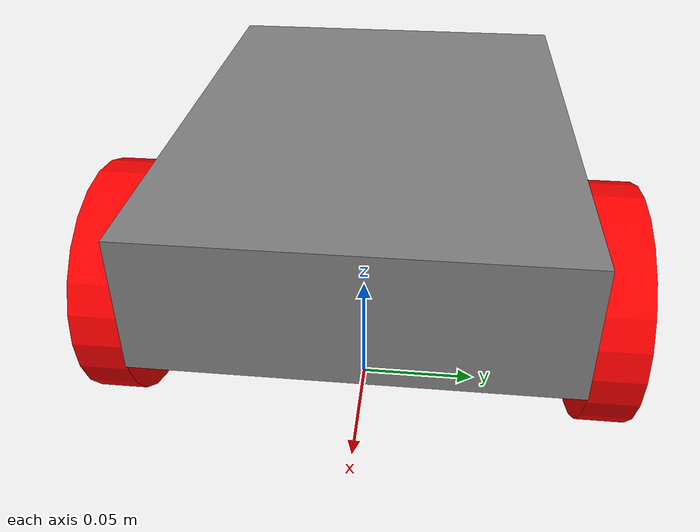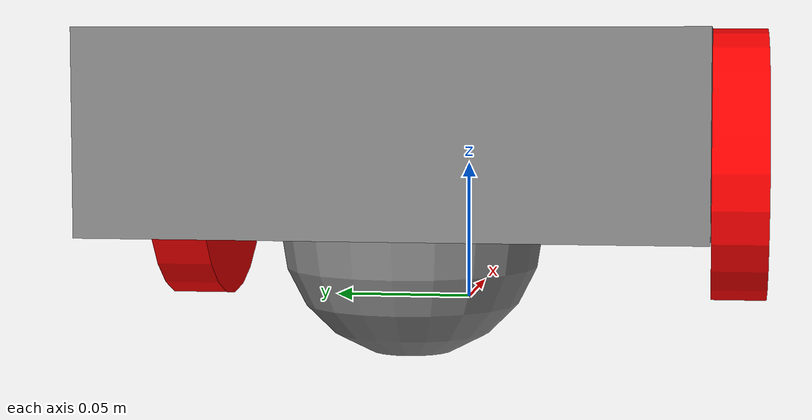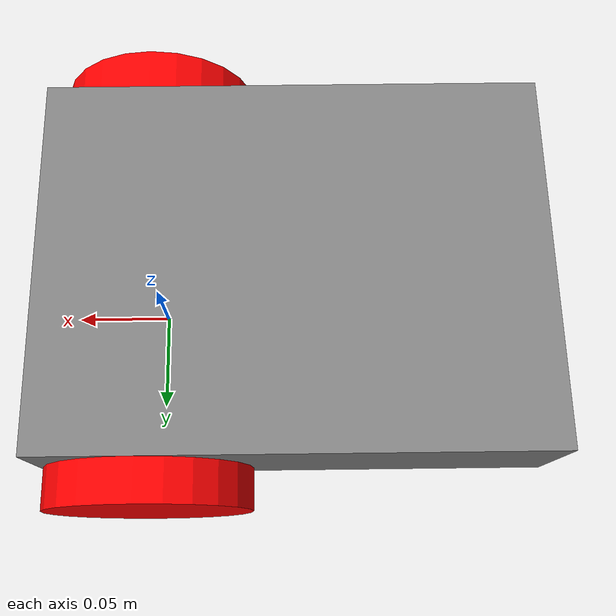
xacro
<robot name="dtw_robot" xmlns:xacro="http://ros.org/wiki/xacro">
    <xacro:include filename="$(find sim2_lecture)/xacro/move_macro.xacro"/>
    <xacro:include filename="$(find sim2_lecture)/xacro/camera_macro.xacro"/>

    <link name="base_link"/>

    <xacro:body_macro parent="base_link" />
    <xacro:wheel_macro prefix="left_wheel" parent="base_link" xyz="0 0.1 0.05"/>
    <xacro:wheel_macro prefix="right_wheel" parent="base_link" xyz="0 -0.1 0.05"/>

    <xacro:camera_macro prefix="head_camera" parent="base_link" xyz="0.1 0 0.08"/>

    <gazebo>
        <plugin name="gazebo_ros_control" filename="libgazebo_ros_control.so">
            <robotNamespace>/dtw_robot</robotNamespace>
            <robotSimType>gazebo_ros_control/DefaultRobotHWSim</robotSimType>
            <legacyModeNS>true</legacyModeNS>
        </plugin>
    </gazebo>
</robot>

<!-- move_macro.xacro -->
<robot name="dtw_robot" xmlns:xacro="http://ros.org/wiki/xacro">
  <material name="gray">
    <color rgba="0.5 0.5 0.5 2.5"/>
  </material>
  <material name="red">
    <color rgba="1.0 0.0 0.0 2.5"/>
  </material>

  <xacro:macro name="wheel_macro" params="parent prefix xyz">
    <joint name="${prefix}_joint" type="continuous">
      <origin xyz="${xyz}" rpy="${radians(-90)} 0 0"/>
      <parent link="${parent}"/>
      <child  link="${prefix}_link"/>
      <axis xyz="0 0 1" />
      <limit velocity="12.0" effort="0.4" />
      <dynamics damping="0.1"/>
    </joint>
    <transmission name="${prefix}_trans">
      <type>transmission_interface/SimpleTransmission</type>
      <joint name="${prefix}_joint">
          <hardwareInterface>hardware_interface/VelocityJointInterface</hardwareInterface>
      </joint>
      <actuator name="${prefix}_motor">
        <hardwareInterface>hardware_interface/VelocityJointInterface</hardwareInterface>
        <mechanismReduction>1</mechanismReduction>
      </actuator>
    </transmission>
    <link name="${prefix}_link">
      <inertial>
        <origin xyz="0 0 0" rpy="0 0 0"/>
        <mass value="0.1"/>
        <inertia ixx="0.0001" ixy="0.0" ixz="0.0" iyy="0.0001" iyz="0.0" izz="0.0001"/>
      </inertial>
      <visual>
        <geometry>
          <cylinder radius="0.05" length="0.02" />
        </geometry>
        <material name="red"/>
      </visual>
      <collision>
        <geometry>
          <cylinder radius="0.05" length="0.02" />
        </geometry>
      </collision>
    </link>
    <gazebo reference="${prefix}_link">
      <material>Gazebo/Red</material>
      <mu1 value="2.5" />
      <mu2 value="2.5" />
      <kp value="50000" />
      <kd value="10" />
    </gazebo>
  </xacro:macro>

  <xacro:macro name="body_macro" params="parent">
    <joint name="body_joint" type="fixed">
      <parent link="${parent}"/>
      <child  link="body_link"/>
      <origin xyz="-0.07 0 0.07" rpy="0 0 0"/>
    </joint>
    <link name="body_link">
      <inertial>
        <origin xyz="0 0 0" rpy="0 0 0"/>
        <mass value="1.0"/>
        <inertia ixx="0.001" ixy="0.0" ixz="0.0" iyy="0.001" iyz="0.0" izz="0.001"/>
      </inertial>
      <visual>
        <origin xyz="0 0 0" rpy="0 0 0" />
        <geometry>
          <box size="0.24 0.18 0.06" />
        </geometry>
        <material name="gray" />
      </visual>
      <collision>
        <origin xyz="0 0 0" rpy="0 0 0" />
        <geometry>
          <box size="0.24 0.178 0.06" />
        </geometry>
      </collision>
    </link>
    <gazebo reference="body_link">
      <material>Gazebo/Gray</material>
    </gazebo>

    <joint name="ball_joint" type="fixed">
      <parent link="${parent}"/>
      <child  link="ball_link"/>
      <origin xyz="-0.14 0 0.04" rpy="0 0 0"/>
    </joint>
    <link name="ball_link">
      <visual>
        <origin xyz="0 0 0" rpy="0 0 0" />
        <geometry>
          <sphere radius="0.04" />
        </geometry>
        <material name="gray" />
      </visual>
      <collision>
        <origin xyz="0 0 0" rpy="0 0 0" />
        <geometry>
          <sphere radius="0.04" />
        </geometry>
        <material name="gray" />
      </collision>
    </link>
    <gazebo reference="ball_link">
      <material>Gazebo/Gray</material>
      <mu1 value="0.5" />
      <mu2 value="0.5" />
    </gazebo>
  </xacro:macro>
</robot>

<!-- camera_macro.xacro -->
<robot name="dtw_robot" xmlns:xacro="http://ros.org/wiki/xacro">
    <xacro:macro name="camera_macro" params="parent prefix xyz">
        <joint name="${prefix}_joint" type="fixed">
            <origin xyz="${xyz}" rpy="0 0 0"/>
            <parent link="${parent}"/>
            <child link="${prefix}_link"/>
        </joint>
        <link name="${prefix}_link"/>
        <gazebo reference="${prefix}_link">
            <sensor type="camera" name="${prefix}">
                <update_rate>10.0</update_rate>
                <camera name="${prefix}">
                    <pose>0 0 0 0 0 0</pose>
                    <horizontal_fov>1.3962634</horizontal_fov>
                    <image>
                        <width>800</width>
                        <height>600</height>
                        <format>R8G8B8</format>
                    </image>
                    <clip>
                        <near>0.02</near>
                        <far>300</far>
                    </clip>
                    <noise>
                        <type>gaussian</type>
                        <mean>0.0</mean>
                        <stddev>0.007</stddev>
                    </noise>
                </camera>
                <plugin name="camera_controller" filename="libgazebo_ros_camera.so">
                    <alwaysOn>true</alwaysOn>
                    <updateRate>0.0</updateRate>
                    <cameraName>${prefix}</cameraName>
                    <imageTopicName>image_raw</imageTopicName>
                    <cameraInfoTopicName>camera_info</cameraInfoTopicName>
                    <frameName>${prefix}_link</frameName>
                    <hackBaseline>0.0</hackBaseline>
                    <distortionK1>0.0</distortionK1>
                    <distortionK2>0.0</distortionK2>
                    <distortionK3>0.0</distortionK3>
                    <distortionT1>0.0</distortionT1>
                    <distortionT2>0.0</distortionT2>
                </plugin>
            </sensor>
        </gazebo>
    </xacro:macro>
</robot>
